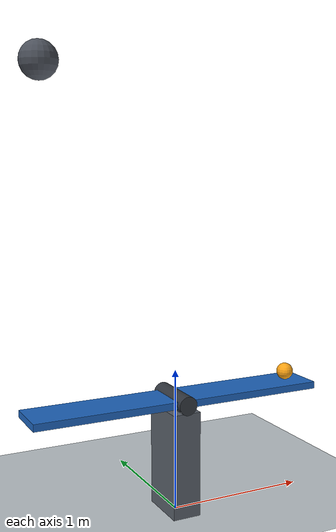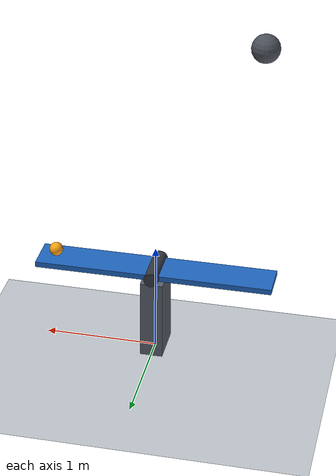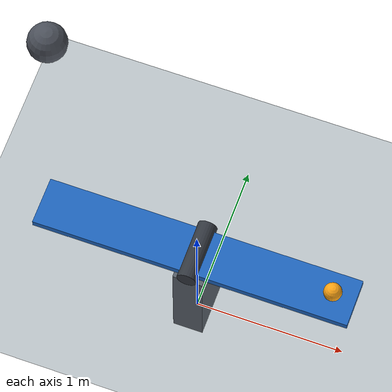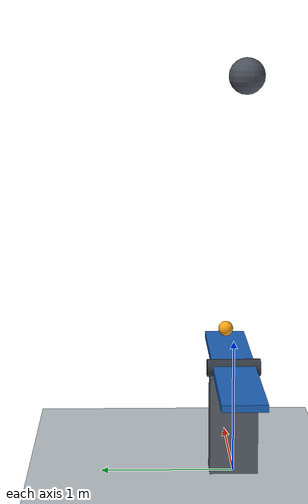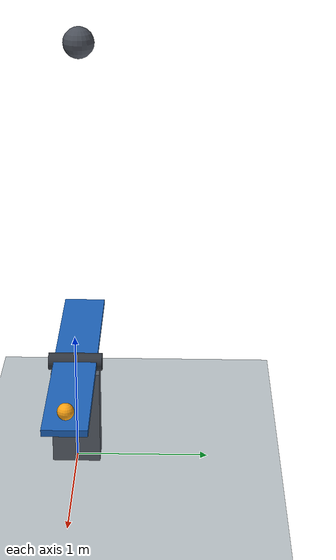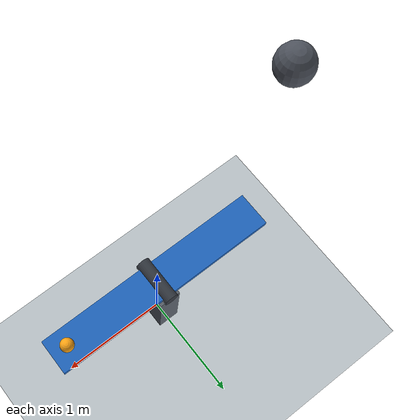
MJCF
<mujoco model="gravity_seesaw_launcher">
  <compiler angle="radian"/>
  <option timestep="0.002" gravity="0 0 -9.81" integrator="implicitfast" solver="Newton" iterations="100" cone="elliptic"/>

  <worldbody>
    <light name="overhead_light" pos="0 -2 5" dir="0 0 -1"/>
    <geom name="floor" type="plane" pos="0 0 0" size="5 5 0.1" friction="0.8 0.005 0.0001" rgba="0.75 0.78 0.80 1"/>

    <body name="fulcrum" pos="0 0 0">
      <geom name="fulcrum_base" type="box" pos="0 0 0.37" size="0.10 0.18 0.37" contype="0" conaffinity="0" rgba="0.35 0.38 0.42 1"/>
      <geom name="fulcrum_axle" type="cylinder" pos="0 0 0.8" quat="0.70710678 0.70710678 0 0" size="0.065 0.20" contype="0" conaffinity="0" rgba="0.20 0.22 0.25 1"/>
    </body>

    <body name="seesaw" pos="0 0 0.8">
      <joint name="seesaw_hinge" type="hinge" axis="0 -1 0" limited="true" range="0 0.5" damping="0.01" frictionloss="0" solreflimit="0.004 1" solimplimit="0.99 0.99 0.001"/>
      <geom name="seesaw_deck" type="box" size="1.05 0.16 0.025" mass="0.2" friction="1 0.005 0.0001" solref="0.006 1" solimp="0.99 0.99 0.001" rgba="0.12 0.40 0.75 1"/>
    </body>

    <body name="weight" pos="-0.9 0 3">
      <freejoint name="weight_free"/>
      <geom name="weight_sphere" type="sphere" size="0.12" mass="1" friction="1 0.005 0.0001" solref="0.006 1" solimp="0.99 0.99 0.001" rgba="0.30 0.32 0.36 1"/>
    </body>

    <body name="ball" pos="0.9 0 0.885">
      <freejoint name="ball_free"/>
      <geom name="ball" type="sphere" size="0.06" mass="0.1" friction="1 0.005 0.0001" solref="0.006 1" solimp="0.99 0.99 0.001" rgba="1 0.65 0.08 1"/>
    </body>
  </worldbody>

  <keyframe>
    <key name="start" qpos="0 -0.9 0 3 1 0 0 0 0.9 0 0.885 1 0 0 0"/>
  </keyframe>
</mujoco>
